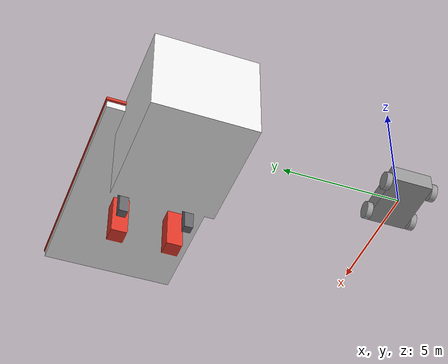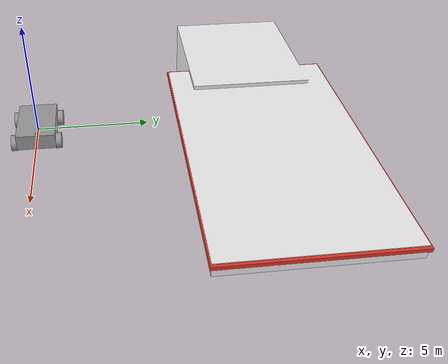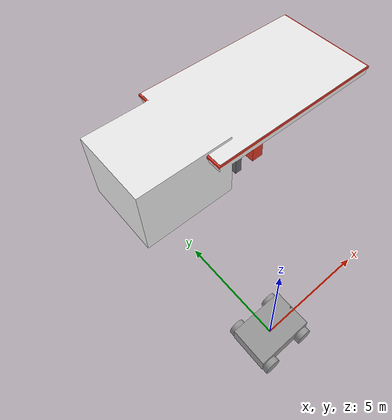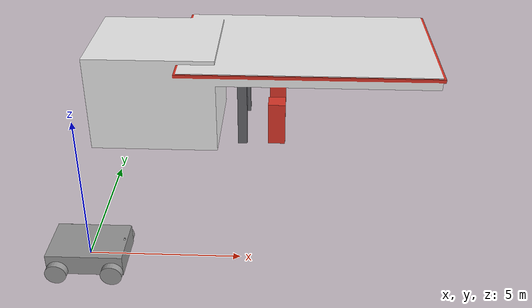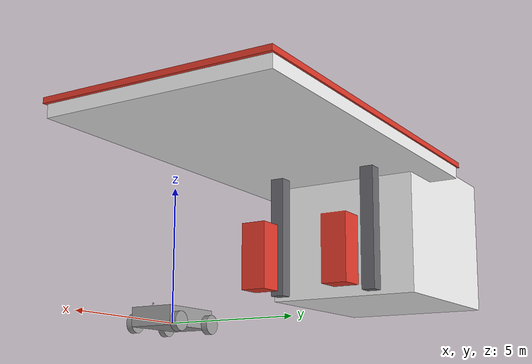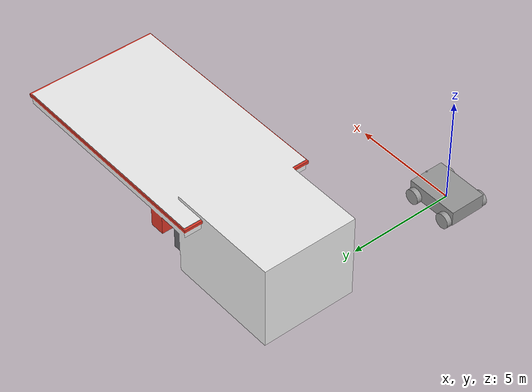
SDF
<?xml version='1.0'?>
<sdf version='1.6'>
  <model name='LIDAR_Car'>
    <link name='link_0'>
      <inertial>
        <mass>3.1434</mass>
        <inertia>
          <ixx>0.877717</ixx>
          <ixy>0</ixy>
          <ixz>0</ixz>
          <iyy>1.7594</iyy>
          <iyz>0</iyz>
          <izz>2.39269</izz>
        </inertia>
        <pose frame=''>0 0 0 0 -0 0</pose>
      </inertial>
      <pose frame=''>-0 -0 0.16 0 -0 0</pose>
      <gravity>1</gravity>
      <self_collide>0</self_collide>
      <kinematic>0</kinematic>
      <enable_wind>0</enable_wind>
      <visual name='visual'>
        <pose frame=''>0 0 0 0 -0 0</pose>
        <geometry>
          <box>
            <size>2.5 1.7 0.7</size>
          </box>
        </geometry>
        <material>
          <lighting>1</lighting>
          <script>
            <uri>file://media/materials/scripts/gazebo.material</uri>
            <name>Gazebo/Grey</name>
          </script>
          <shader type='vertex'>
            <normal_map>__default__</normal_map>
          </shader>
          <ambient>0.3 0.3 0.3 1</ambient>
          <diffuse>0.7 0.7 0.7 1</diffuse>
          <specular>0.01 0.01 0.01 1</specular>
          <emissive>0 0 0 1</emissive>
        </material>
        <transparency>0</transparency>
        <cast_shadows>1</cast_shadows>
      </visual>
      <collision name='collision'>
        <laser_retro>0</laser_retro>
        <max_contacts>10</max_contacts>
        <pose frame=''>0 0 0 0 -0 0</pose>
        <geometry>
          <box>
            <size>2.5 1.69828 0.683043</size>
          </box>
        </geometry>
        <surface>
          <friction>
            <ode>
              <mu>1</mu>
              <mu2>1</mu2>
              <fdir1>0 0 0</fdir1>
              <slip1>0</slip1>
              <slip2>0</slip2>
            </ode>
            <torsional>
              <coefficient>1</coefficient>
              <patch_radius>0</patch_radius>
              <surface_radius>0</surface_radius>
              <use_patch_radius>1</use_patch_radius>
              <ode>
                <slip>0</slip>
              </ode>
            </torsional>
          </friction>
          <bounce>
            <restitution_coefficient>0</restitution_coefficient>
            <threshold>1e+06</threshold>
          </bounce>
          <contact>
            <collide_without_contact>0</collide_without_contact>
            <collide_without_contact_bitmask>1</collide_without_contact_bitmask>
            <collide_bitmask>1</collide_bitmask>
            <ode>
              <soft_cfm>0</soft_cfm>
              <soft_erp>0.2</soft_erp>
              <kp>1e+13</kp>
              <kd>1</kd>
              <max_vel>0.01</max_vel>
              <min_depth>0</min_depth>
            </ode>
            <bullet>
              <split_impulse>1</split_impulse>
              <split_impulse_penetration_threshold>-0.01</split_impulse_penetration_threshold>
              <soft_cfm>0</soft_cfm>
              <soft_erp>0.2</soft_erp>
              <kp>1e+13</kp>
              <kd>1</kd>
            </bullet>
          </contact>
        </surface>
      </collision>
    </link>
    <link name='link_0_0'>
      <inertial>
        <mass>0.0218115</mass>
        <inertia>
          <ixx>0.00528267</ixx>
          <ixy>0</ixy>
          <ixz>0</ixz>
          <iyy>0.00528267</iyy>
          <iyz>0</iyz>
          <izz>5.94636e-05</izz>
        </inertia>
        <pose frame=''>0 0 0 0 -0 0</pose>
      </inertial>
      <pose frame=''>0.866921 -2.6e-05 -0.073072 1.57 -0 0</pose>
      <gravity>1</gravity>
      <self_collide>0</self_collide>
      <kinematic>0</kinematic>
      <enable_wind>0</enable_wind>
      <visual name='visual'>
        <pose frame=''>0 0 0 0 -0 0</pose>
        <geometry>
          <cylinder>
            <radius>0.073841</radius>
            <length>1.7</length>
          </cylinder>
        </geometry>
        <material>
          <lighting>1</lighting>
          <script>
            <uri>file://media/materials/scripts/gazebo.material</uri>
            <name>Gazebo/Grey</name>
          </script>
          <shader type='vertex'>
            <normal_map>__default__</normal_map>
          </shader>
          <ambient>0.3 0.3 0.3 1</ambient>
          <diffuse>0.7 0.7 0.7 1</diffuse>
          <specular>0.01 0.01 0.01 1</specular>
          <emissive>0 0 0 1</emissive>
        </material>
        <transparency>0</transparency>
        <cast_shadows>1</cast_shadows>
      </visual>
      <collision name='collision'>
        <laser_retro>0</laser_retro>
        <max_contacts>10</max_contacts>
        <pose frame=''>0 0 0 0 -0 0</pose>
        <geometry>
          <cylinder>
            <radius>0.073841</radius>
            <length>1.7</length>
          </cylinder>
        </geometry>
        <surface>
          <friction>
            <ode>
              <mu>1</mu>
              <mu2>1</mu2>
              <fdir1>0 0 0</fdir1>
              <slip1>0</slip1>
              <slip2>0</slip2>
            </ode>
            <torsional>
              <coefficient>1</coefficient>
              <patch_radius>0</patch_radius>
              <surface_radius>0</surface_radius>
              <use_patch_radius>1</use_patch_radius>
              <ode>
                <slip>0</slip>
              </ode>
            </torsional>
          </friction>
          <bounce>
            <restitution_coefficient>0</restitution_coefficient>
            <threshold>1e+06</threshold>
          </bounce>
          <contact>
            <collide_without_contact>0</collide_without_contact>
            <collide_without_contact_bitmask>1</collide_without_contact_bitmask>
            <collide_bitmask>1</collide_bitmask>
            <ode>
              <soft_cfm>0</soft_cfm>
              <soft_erp>0.2</soft_erp>
              <kp>1e+13</kp>
              <kd>1</kd>
              <max_vel>0.01</max_vel>
              <min_depth>0</min_depth>
            </ode>
            <bullet>
              <split_impulse>1</split_impulse>
              <split_impulse_penetration_threshold>-0.01</split_impulse_penetration_threshold>
              <soft_cfm>0</soft_cfm>
              <soft_erp>0.2</soft_erp>
              <kp>1e+13</kp>
              <kd>1</kd>
            </bullet>
          </contact>
        </surface>
      </collision>
    </link>
    <link name='link_0_0_clone'>
      <inertial>
        <mass>0.0218115</mass>
        <inertia>
          <ixx>0.00528267</ixx>
          <ixy>0</ixy>
          <ixz>0</ixz>
          <iyy>0.00528267</iyy>
          <iyz>0</iyz>
          <izz>5.94636e-05</izz>
        </inertia>
        <pose frame=''>0 0 0 0 -0 0</pose>
      </inertial>
      <pose frame=''>-0.89931 -0.00067 -0.039992 1.57 -2.8e-05 0.000745</pose>
      <gravity>1</gravity>
      <self_collide>0</self_collide>
      <kinematic>0</kinematic>
      <enable_wind>0</enable_wind>
      <visual name='visual'>
        <pose frame=''>0 0 0 0 -0 0</pose>
        <geometry>
          <cylinder>
            <radius>0.073841</radius>
            <length>1.7</length>
          </cylinder>
        </geometry>
        <material>
          <lighting>1</lighting>
          <script>
            <uri>file://media/materials/scripts/gazebo.material</uri>
            <name>Gazebo/Grey</name>
          </script>
          <shader type='vertex'>
            <normal_map>__default__</normal_map>
          </shader>
          <ambient>0.3 0.3 0.3 1</ambient>
          <diffuse>0.7 0.7 0.7 1</diffuse>
          <specular>0.01 0.01 0.01 1</specular>
          <emissive>0 0 0 1</emissive>
        </material>
        <transparency>0</transparency>
        <cast_shadows>1</cast_shadows>
      </visual>
      <collision name='collision'>
        <laser_retro>0</laser_retro>
        <max_contacts>10</max_contacts>
        <pose frame=''>0 0 0 0 -0 0</pose>
        <geometry>
          <cylinder>
            <radius>0.073841</radius>
            <length>1.7</length>
          </cylinder>
        </geometry>
        <surface>
          <friction>
            <ode>
              <mu>1</mu>
              <mu2>1</mu2>
              <fdir1>0 0 0</fdir1>
              <slip1>0</slip1>
              <slip2>0</slip2>
            </ode>
            <torsional>
              <coefficient>1</coefficient>
              <patch_radius>0</patch_radius>
              <surface_radius>0</surface_radius>
              <use_patch_radius>1</use_patch_radius>
              <ode>
                <slip>0</slip>
              </ode>
            </torsional>
          </friction>
          <bounce>
            <restitution_coefficient>0</restitution_coefficient>
            <threshold>1e+06</threshold>
          </bounce>
          <contact>
            <collide_without_contact>0</collide_without_contact>
            <collide_without_contact_bitmask>1</collide_without_contact_bitmask>
            <collide_bitmask>1</collide_bitmask>
            <ode>
              <soft_cfm>0</soft_cfm>
              <soft_erp>0.2</soft_erp>
              <kp>1e+13</kp>
              <kd>1</kd>
              <max_vel>0.01</max_vel>
              <min_depth>0</min_depth>
            </ode>
            <bullet>
              <split_impulse>1</split_impulse>
              <split_impulse_penetration_threshold>-0.01</split_impulse_penetration_threshold>
              <soft_cfm>0</soft_cfm>
              <soft_erp>0.2</soft_erp>
              <kp>1e+13</kp>
              <kd>1</kd>
            </bullet>
          </contact>
        </surface>
      </collision>
    </link>
    <link name='link_1'>
      <inertial>
        <mass>0.243107</mass>
        <inertia>
          <ixx>0.00864251</ixx>
          <ixy>0</ixy>
          <ixz>0</ixz>
          <iyy>0.00864251</iyy>
          <iyz>0</iyz>
          <izz>0.0148903</izz>
        </inertia>
        <pose frame=''>0 0 0 0 -0 0</pose>
      </inertial>
      <pose frame=''>0.9 -0.970974 -0.04 1.57 -0 0</pose>
      <gravity>1</gravity>
      <self_collide>0</self_collide>
      <kinematic>0</kinematic>
      <enable_wind>0</enable_wind>
      <visual name='visual'>
        <pose frame=''>0 0 0 0 -0 0</pose>
        <geometry>
          <cylinder>
            <radius>0.35</radius>
            <length>0.243109</length>
          </cylinder>
        </geometry>
        <material>
          <lighting>1</lighting>
          <script>
            <uri>file://media/materials/scripts/gazebo.material</uri>
            <name>Gazebo/Grey</name>
          </script>
          <shader type='vertex'>
            <normal_map>__default__</normal_map>
          </shader>
          <ambient>0.3 0.3 0.3 1</ambient>
          <diffuse>0.7 0.7 0.7 1</diffuse>
          <specular>0.01 0.01 0.01 1</specular>
          <emissive>0 0 0 1</emissive>
        </material>
        <transparency>0</transparency>
        <cast_shadows>1</cast_shadows>
      </visual>
      <collision name='collision'>
        <laser_retro>0</laser_retro>
        <max_contacts>10</max_contacts>
        <pose frame=''>0 0 0 0 -0 0</pose>
        <geometry>
          <cylinder>
            <radius>0.35</radius>
            <length>0.243109</length>
          </cylinder>
        </geometry>
        <surface>
          <friction>
            <ode>
              <mu>1</mu>
              <mu2>1</mu2>
              <fdir1>0 0 0</fdir1>
              <slip1>0</slip1>
              <slip2>0</slip2>
            </ode>
            <torsional>
              <coefficient>1</coefficient>
              <patch_radius>0</patch_radius>
              <surface_radius>0</surface_radius>
              <use_patch_radius>1</use_patch_radius>
              <ode>
                <slip>0</slip>
              </ode>
            </torsional>
          </friction>
          <bounce>
            <restitution_coefficient>0</restitution_coefficient>
            <threshold>1e+06</threshold>
          </bounce>
          <contact>
            <collide_without_contact>0</collide_without_contact>
            <collide_without_contact_bitmask>1</collide_without_contact_bitmask>
            <collide_bitmask>1</collide_bitmask>
            <ode>
              <soft_cfm>0</soft_cfm>
              <soft_erp>0.2</soft_erp>
              <kp>1e+13</kp>
              <kd>1</kd>
              <max_vel>0.01</max_vel>
              <min_depth>0</min_depth>
            </ode>
            <bullet>
              <split_impulse>1</split_impulse>
              <split_impulse_penetration_threshold>-0.01</split_impulse_penetration_threshold>
              <soft_cfm>0</soft_cfm>
              <soft_erp>0.2</soft_erp>
              <kp>1e+13</kp>
              <kd>1</kd>
            </bullet>
          </contact>
        </surface>
      </collision>
    </link>
    <link name='link_1_clone'>
      <inertial>
        <mass>0.243107</mass>
        <inertia>
          <ixx>0.00864251</ixx>
          <ixy>0</ixy>
          <ixz>0</ixz>
          <iyy>0.00864251</iyy>
          <iyz>0</iyz>
          <izz>0.0148903</izz>
        </inertia>
        <pose frame=''>0 0 0 0 -0 0</pose>
      </inertial>
      <pose frame=''>0.9 0.970974 -0.04 1.57 -0 0</pose>
      <gravity>1</gravity>
      <self_collide>0</self_collide>
      <kinematic>0</kinematic>
      <enable_wind>0</enable_wind>
      <visual name='visual'>
        <pose frame=''>0 0 0 0 -0 0</pose>
        <geometry>
          <cylinder>
            <radius>0.35</radius>
            <length>0.243109</length>
          </cylinder>
        </geometry>
        <material>
          <lighting>1</lighting>
          <script>
            <uri>file://media/materials/scripts/gazebo.material</uri>
            <name>Gazebo/Grey</name>
          </script>
          <shader type='vertex'>
            <normal_map>__default__</normal_map>
          </shader>
          <ambient>0.3 0.3 0.3 1</ambient>
          <diffuse>0.7 0.7 0.7 1</diffuse>
          <specular>0.01 0.01 0.01 1</specular>
          <emissive>0 0 0 1</emissive>
        </material>
        <transparency>0</transparency>
        <cast_shadows>1</cast_shadows>
      </visual>
      <collision name='collision'>
        <laser_retro>0</laser_retro>
        <max_contacts>10</max_contacts>
        <pose frame=''>0 0 0 0 -0 0</pose>
        <geometry>
          <cylinder>
            <radius>0.35</radius>
            <length>0.243109</length>
          </cylinder>
        </geometry>
        <surface>
          <friction>
            <ode>
              <mu>1</mu>
              <mu2>1</mu2>
              <fdir1>0 0 0</fdir1>
              <slip1>0</slip1>
              <slip2>0</slip2>
            </ode>
            <torsional>
              <coefficient>1</coefficient>
              <patch_radius>0</patch_radius>
              <surface_radius>0</surface_radius>
              <use_patch_radius>1</use_patch_radius>
              <ode>
                <slip>0</slip>
              </ode>
            </torsional>
          </friction>
          <bounce>
            <restitution_coefficient>0</restitution_coefficient>
            <threshold>1e+06</threshold>
          </bounce>
          <contact>
            <collide_without_contact>0</collide_without_contact>
            <collide_without_contact_bitmask>1</collide_without_contact_bitmask>
            <collide_bitmask>1</collide_bitmask>
            <ode>
              <soft_cfm>0</soft_cfm>
              <soft_erp>0.2</soft_erp>
              <kp>1e+13</kp>
              <kd>1</kd>
              <max_vel>0.01</max_vel>
              <min_depth>0</min_depth>
            </ode>
            <bullet>
              <split_impulse>1</split_impulse>
              <split_impulse_penetration_threshold>-0.01</split_impulse_penetration_threshold>
              <soft_cfm>0</soft_cfm>
              <soft_erp>0.2</soft_erp>
              <kp>1e+13</kp>
              <kd>1</kd>
            </bullet>
          </contact>
        </surface>
      </collision>
    </link>
    <link name='link_1_clone_0'>
      <inertial>
        <mass>0.243107</mass>
        <inertia>
          <ixx>0.00864251</ixx>
          <ixy>0</ixy>
          <ixz>0</ixz>
          <iyy>0.00864251</iyy>
          <iyz>0</iyz>
          <izz>0.0148903</izz>
        </inertia>
        <pose frame=''>0 0 0 0 -0 0</pose>
      </inertial>
      <pose frame=''>-0.899995 -0.971895 -0.04 1.57 -0 0</pose>
      <gravity>1</gravity>
      <self_collide>0</self_collide>
      <kinematic>0</kinematic>
      <enable_wind>0</enable_wind>
      <visual name='visual'>
        <pose frame=''>0 0 0 0 -0 0</pose>
        <geometry>
          <cylinder>
            <radius>0.35</radius>
            <length>0.243109</length>
          </cylinder>
        </geometry>
        <material>
          <lighting>1</lighting>
          <script>
            <uri>file://media/materials/scripts/gazebo.material</uri>
            <name>Gazebo/Grey</name>
          </script>
          <shader type='vertex'>
            <normal_map>__default__</normal_map>
          </shader>
          <ambient>0.3 0.3 0.3 1</ambient>
          <diffuse>0.7 0.7 0.7 1</diffuse>
          <specular>0.01 0.01 0.01 1</specular>
          <emissive>0 0 0 1</emissive>
        </material>
        <transparency>0</transparency>
        <cast_shadows>1</cast_shadows>
      </visual>
      <collision name='collision'>
        <laser_retro>0</laser_retro>
        <max_contacts>10</max_contacts>
        <pose frame=''>0 0 0 0 -0 0</pose>
        <geometry>
          <cylinder>
            <radius>0.35</radius>
            <length>0.243109</length>
          </cylinder>
        </geometry>
        <surface>
          <friction>
            <ode>
              <mu>1</mu>
              <mu2>1</mu2>
              <fdir1>0 0 0</fdir1>
              <slip1>0</slip1>
              <slip2>0</slip2>
            </ode>
            <torsional>
              <coefficient>1</coefficient>
              <patch_radius>0</patch_radius>
              <surface_radius>0</surface_radius>
              <use_patch_radius>1</use_patch_radius>
              <ode>
                <slip>0</slip>
              </ode>
            </torsional>
          </friction>
          <bounce>
            <restitution_coefficient>0</restitution_coefficient>
            <threshold>1e+06</threshold>
          </bounce>
          <contact>
            <collide_without_contact>0</collide_without_contact>
            <collide_without_contact_bitmask>1</collide_without_contact_bitmask>
            <collide_bitmask>1</collide_bitmask>
            <ode>
              <soft_cfm>0</soft_cfm>
              <soft_erp>0.2</soft_erp>
              <kp>1e+13</kp>
              <kd>1</kd>
              <max_vel>0.01</max_vel>
              <min_depth>0</min_depth>
            </ode>
            <bullet>
              <split_impulse>1</split_impulse>
              <split_impulse_penetration_threshold>-0.01</split_impulse_penetration_threshold>
              <soft_cfm>0</soft_cfm>
              <soft_erp>0.2</soft_erp>
              <kp>1e+13</kp>
              <kd>1</kd>
            </bullet>
          </contact>
        </surface>
      </collision>
    </link>
    <link name='link_1_clone_1'>
      <inertial>
        <mass>0.243107</mass>
        <inertia>
          <ixx>0.00864251</ixx>
          <ixy>0</ixy>
          <ixz>0</ixz>
          <iyy>0.00864251</iyy>
          <iyz>0</iyz>
          <izz>0.0148903</izz>
        </inertia>
        <pose frame=''>0 0 0 0 -0 0</pose>
      </inertial>
      <pose frame=''>-0.900042 0.990296 -0.04 1.57 -0 0</pose>
      <gravity>1</gravity>
      <self_collide>0</self_collide>
      <kinematic>0</kinematic>
      <enable_wind>0</enable_wind>
      <visual name='visual'>
        <pose frame=''>0 0 0 0 -0 0</pose>
        <geometry>
          <cylinder>
            <radius>0.35</radius>
            <length>0.243109</length>
          </cylinder>
        </geometry>
        <material>
          <lighting>1</lighting>
          <script>
            <uri>file://media/materials/scripts/gazebo.material</uri>
            <name>Gazebo/Grey</name>
          </script>
          <shader type='vertex'>
            <normal_map>__default__</normal_map>
          </shader>
          <ambient>0.3 0.3 0.3 1</ambient>
          <diffuse>0.7 0.7 0.7 1</diffuse>
          <specular>0.01 0.01 0.01 1</specular>
          <emissive>0 0 0 1</emissive>
        </material>
        <transparency>0</transparency>
        <cast_shadows>1</cast_shadows>
      </visual>
      <collision name='collision'>
        <laser_retro>0</laser_retro>
        <max_contacts>10</max_contacts>
        <pose frame=''>0 0 0 0 -0 0</pose>
        <geometry>
          <cylinder>
            <radius>0.35</radius>
            <length>0.243109</length>
          </cylinder>
        </geometry>
        <surface>
          <friction>
            <ode>
              <mu>1</mu>
              <mu2>1</mu2>
              <fdir1>0 0 0</fdir1>
              <slip1>0</slip1>
              <slip2>0</slip2>
            </ode>
            <torsional>
              <coefficient>1</coefficient>
              <patch_radius>0</patch_radius>
              <surface_radius>0</surface_radius>
              <use_patch_radius>1</use_patch_radius>
              <ode>
                <slip>0</slip>
              </ode>
            </torsional>
          </friction>
          <bounce>
            <restitution_coefficient>0</restitution_coefficient>
            <threshold>1e+06</threshold>
          </bounce>
          <contact>
            <collide_without_contact>0</collide_without_contact>
            <collide_without_contact_bitmask>1</collide_without_contact_bitmask>
            <collide_bitmask>1</collide_bitmask>
            <ode>
              <soft_cfm>0</soft_cfm>
              <soft_erp>0.2</soft_erp>
              <kp>1e+13</kp>
              <kd>1</kd>
              <max_vel>0.01</max_vel>
              <min_depth>0</min_depth>
            </ode>
            <bullet>
              <split_impulse>1</split_impulse>
              <split_impulse_penetration_threshold>-0.01</split_impulse_penetration_threshold>
              <soft_cfm>0</soft_cfm>
              <soft_erp>0.2</soft_erp>
              <kp>1e+13</kp>
              <kd>1</kd>
            </bullet>
          </contact>
        </surface>
      </collision>
    </link>
    <model name='Gas Station'>
      <static>1</static>
      <link name='link'>
        <pose frame=''>0 0 0 0 -0 0</pose>
        <collision name='collision'>
          <geometry>
            <mesh>
              <uri>model://gas_station/meshes/gas_station.dae</uri>
            </mesh>
          </geometry>
        </collision>
        <visual name='visual'>
          <geometry>
            <mesh>
              <uri>model://gas_station/meshes/gas_station.dae</uri>
            </mesh>
          </geometry>
          <material>
            <script>
              <uri>model://gas_station/materials/scripts</uri>
              <uri>model://gas_station/materials/textures</uri>
              <name>GasStation/Diffuse</name>
            </script>
            <shader type='normal_map_tangent_space'>
              <normal_map>GasStation_Normal.png</normal_map>
            </shader>
          </material>
        </visual>
      </link>
      <pose frame=''>4.82161 8.74146 2.1e-05 0 -0 0</pose>
    </model>
    <model name='hokuyo'>
      <pose frame=''>1.18172 0.039307 0.588259 0 -0 0</pose>
      <link name='link'>
        <inertial>
          <mass>0.1</mass>
        </inertial>
        <visual name='visual'>
          <geometry>
            <mesh>
              <uri>model://hokuyo/meshes/hokuyo.dae</uri>
            </mesh>
          </geometry>
        </visual>
        <collision name='collision-base'>
          <pose frame=''>0 0 -0.0145 0 -0 0</pose>
          <geometry>
            <box>
              <size>0.05 0.05 0.041</size>
            </box>
          </geometry>
        </collision>
        <collision name='collision-top'>
          <pose frame=''>0 0 0.0205 0 -0 0</pose>
          <geometry>
            <cylinder>
              <radius>0.021</radius>
              <length>0.029</length>
            </cylinder>
          </geometry>
        </collision>
        <sensor name='laser' type='ray'>
          <pose frame=''>0.01 0 0.0175 0 -0 0</pose>
          <ray>
            <scan>
              <horizontal>
                <samples>640</samples>
                <resolution>1</resolution>
                <min_angle>-2.26889</min_angle>
                <max_angle>2.2689</max_angle>
              </horizontal>
            </scan>
            <range>
              <min>0.08</min>
              <max>10</max>
              <resolution>0.01</resolution>
            </range>
          </ray>

          <plugin name="gazebo_ros_head_hokuyo_controller" filename="libgazebo_ros_laser.so">
        <topicName>/rrbot/laser/scan</topicName>
        <frameName>hokuyo_link</frameName>
      </plugin>
          <always_on>1</always_on>
          <update_rate>30</update_rate>
          <visualize>1</visualize>
        </sensor>
      </link>
    </model>
    <joint name='Engine' type='revolute'>
      <parent>link_0</parent>
      <child>link_0_0_clone</child>
      <pose frame=''>0 0 0 0 -0 0</pose>
      <axis>
        <xyz>0 0 1</xyz>
        <use_parent_model_frame>0</use_parent_model_frame>
        <limit>
          <lower>-1.79769e+308</lower>
          <upper>1.79769e+308</upper>
          <effort>-1</effort>
          <velocity>-1</velocity>
        </limit>
        <dynamics>
          <spring_reference>0</spring_reference>
          <spring_stiffness>0</spring_stiffness>
          <damping>0</damping>
          <friction>0</friction>
        </dynamics>
      </axis>
      <physics>
        <ode>
          <limit>
            <cfm>0</cfm>
            <erp>0.2</erp>
          </limit>
          <suspension>
            <cfm>0</cfm>
            <erp>0.2</erp>
          </suspension>
        </ode>
      </physics>
    </joint>
    <joint name='Steering' type='revolute'>
      <parent>link_0</parent>
      <child>link_0_0</child>
      <pose frame=''>0 0 0 0 -0 0</pose>
      <axis>
        <xyz>0 1 0</xyz>
        <use_parent_model_frame>0</use_parent_model_frame>
        <limit>
          <lower>-0.523599</lower>
          <upper>0.523599</upper>
          <effort>-1</effort>
          <velocity>-1</velocity>
        </limit>
        <dynamics>
          <spring_reference>0</spring_reference>
          <spring_stiffness>0</spring_stiffness>
          <damping>0</damping>
          <friction>0</friction>
        </dynamics>
      </axis>
      <physics>
        <ode>
          <limit>
            <cfm>0</cfm>
            <erp>0.2</erp>
          </limit>
          <suspension>
            <cfm>0</cfm>
            <erp>0.2</erp>
          </suspension>
        </ode>
      </physics>
    </joint>
    <joint name='link_0_0_JOINT_1' type='revolute'>
      <parent>link_0_0</parent>
      <child>link_1</child>
      <pose frame=''>0 0 0 0 -0 0</pose>
      <axis>
        <xyz>0 0 1</xyz>
        <use_parent_model_frame>0</use_parent_model_frame>
        <limit>
          <lower>-1.79769e+308</lower>
          <upper>1.79769e+308</upper>
          <effort>-1</effort>
          <velocity>-1</velocity>
        </limit>
        <dynamics>
          <spring_reference>0</spring_reference>
          <spring_stiffness>0</spring_stiffness>
          <damping>0</damping>
          <friction>0</friction>
        </dynamics>
      </axis>
      <physics>
        <ode>
          <limit>
            <cfm>0</cfm>
            <erp>0.2</erp>
          </limit>
          <suspension>
            <cfm>0</cfm>
            <erp>0.2</erp>
          </suspension>
        </ode>
      </physics>
    </joint>
    <joint name='link_0_0_JOINT_2' type='revolute'>
      <parent>link_0_0</parent>
      <child>link_1_clone</child>
      <pose frame=''>0 0 0 0 -0 0</pose>
      <axis>
        <xyz>0 0 -1</xyz>
        <use_parent_model_frame>0</use_parent_model_frame>
        <limit>
          <lower>-1.79769e+308</lower>
          <upper>1.79769e+308</upper>
          <effort>-1</effort>
          <velocity>-1</velocity>
        </limit>
        <dynamics>
          <spring_reference>0</spring_reference>
          <spring_stiffness>0</spring_stiffness>
          <damping>0</damping>
          <friction>0</friction>
        </dynamics>
      </axis>
      <physics>
        <ode>
          <limit>
            <cfm>0</cfm>
            <erp>0.2</erp>
          </limit>
          <suspension>
            <cfm>0</cfm>
            <erp>0.2</erp>
          </suspension>
        </ode>
      </physics>
    </joint>
    <joint name='link_0_0_clone_JOINT_0' type='fixed'>
      <parent>link_0_0_clone</parent>
      <child>link_1_clone_1</child>
      <pose frame=''>0 0 0 0 -0 0</pose>
      <physics>
        <ode>
          <limit>
            <cfm>0</cfm>
            <erp>0.2</erp>
          </limit>
          <suspension>
            <cfm>0</cfm>
            <erp>0.2</erp>
          </suspension>
        </ode>
      </physics>
    </joint>
    <joint name='link_0_JOINT_0' type='fixed'>
      <parent>link_0</parent>
      <child>hokuyo::link</child>
      <pose frame=''>0 0 0 0 -0 0</pose>
      <physics>
        <ode>
          <limit>
            <cfm>0</cfm>
            <erp>0.2</erp>
          </limit>
          <suspension>
            <cfm>0</cfm>
            <erp>0.2</erp>
          </suspension>
        </ode>
      </physics>
    </joint>
    <joint name='link_1_clone_0_JOINT_3' type='fixed'>
      <parent>link_0_0_clone</parent>
      <child>link_1_clone_0</child>
      <pose frame=''>0 0 0 0 -0 0</pose>
      <physics>
        <ode>
          <limit>
            <cfm>0</cfm>
            <erp>0.2</erp>
          </limit>
          <suspension>
            <cfm>0</cfm>
            <erp>0.2</erp>
          </suspension>
        </ode>
      </physics>
    </joint>
    <static>0</static>
    <allow_auto_disable>1</allow_auto_disable>
  </model>
</sdf>
